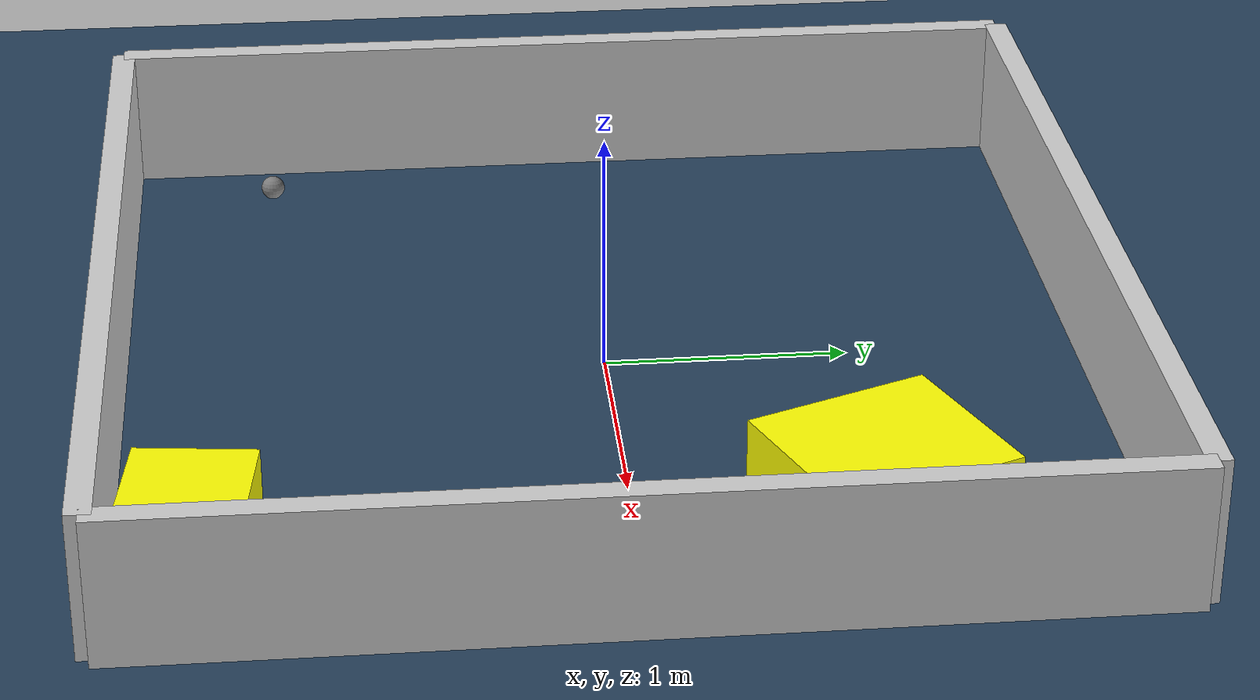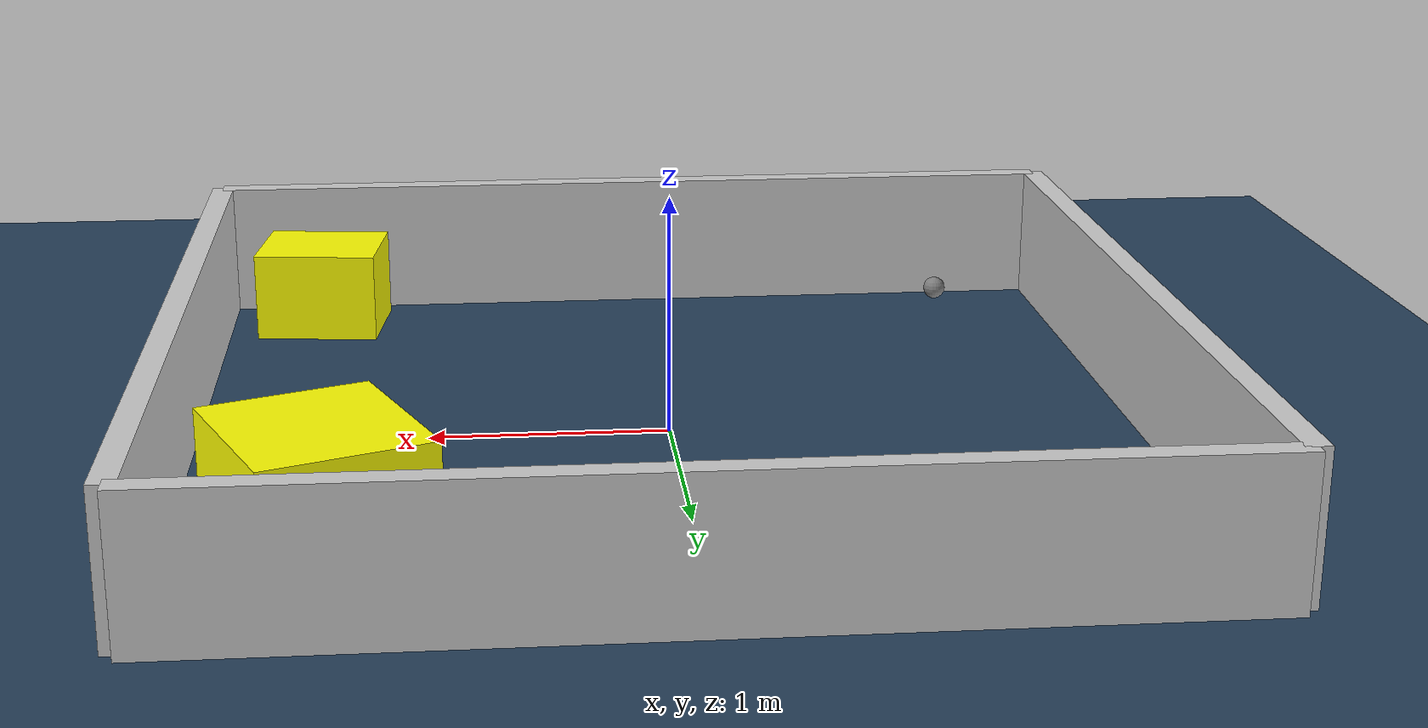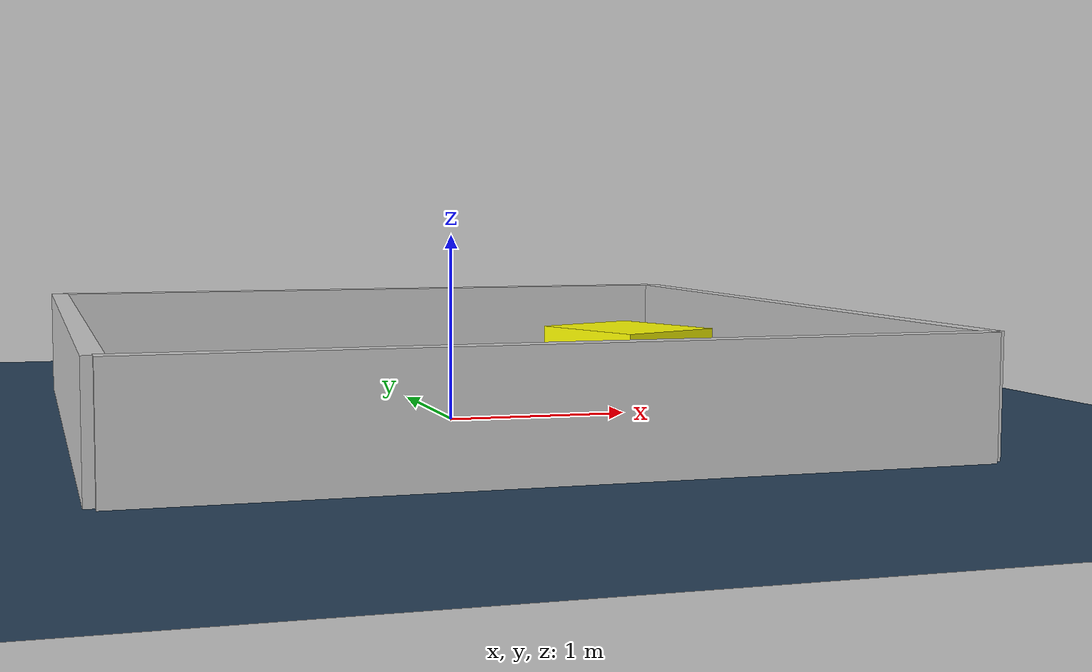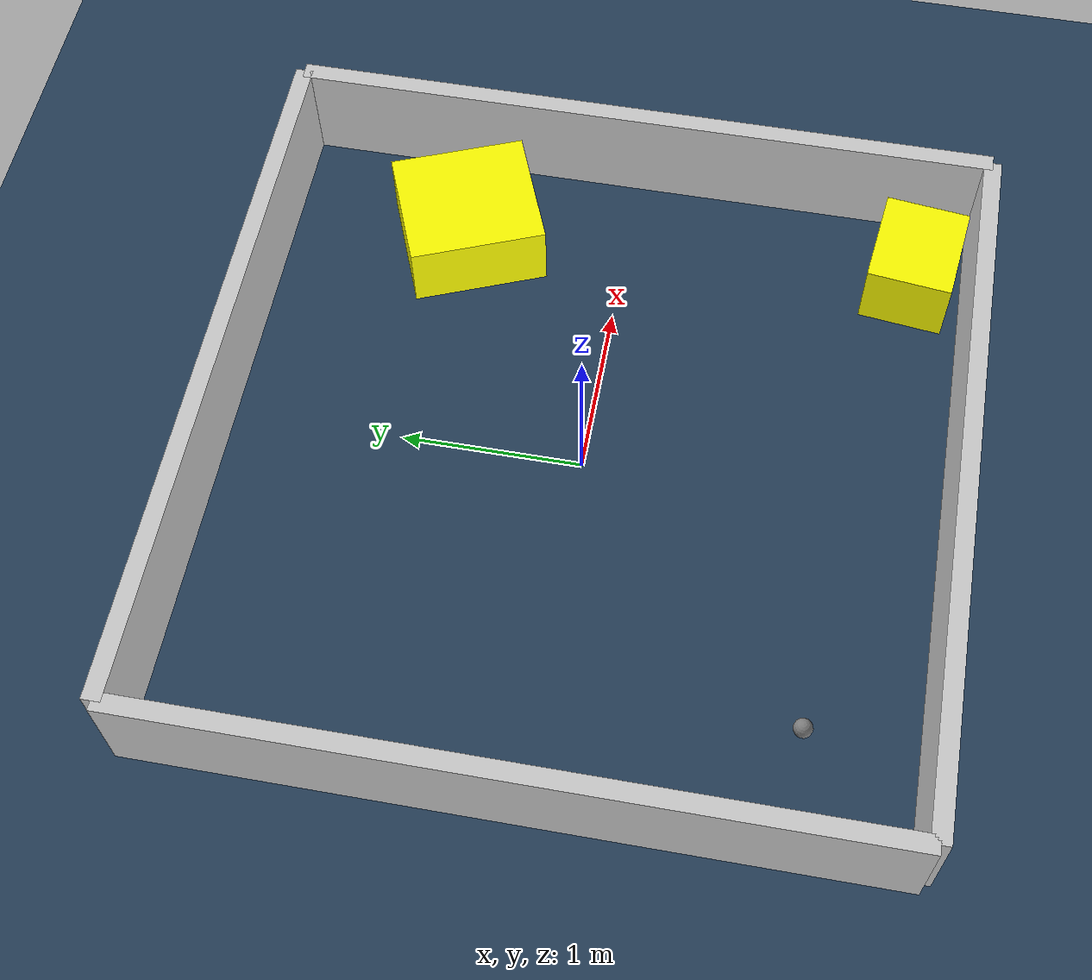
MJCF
<?xml version="1.0" ?>
<mujoco model="generated_environment">
  <option timestep="0.01" integrator="RK4" cone="elliptic"/>
  <default>
    <geom density="1"/>
  </default>
  <asset>
    <texture builtin="gradient" height="3072" rgb1="0.3 0.5 0.7" rgb2="0 0 0" type="skybox" width="512"/>
    <texture builtin="checker" height="300" mark="edge" markrgb="0.8 0.8 0.8" name="groundplane" rgb1="0.2 0.3 0.4" rgb2="0.1 0.2 0.3" type="2d" width="300"/>
    <material name="groundplane" reflectance="0.2" texrepeat="5 5" texture="groundplane" texuniform="true"/>
    <material name="robot" rgba="0.0 1.0 0.0 1"/>
  </asset>
  <worldbody>
    <light dir="0 0 -1" directional="true" pos="0 0 1.5"/>
    <geom condim="4" friction="1.0 0.005 0.001" material="groundplane" name="floor" size="0 0 0.05" type="plane"/>
    <body name="walls">
      <geom name="wall_1" condim="4" pos="-2.0 0.0 0.3" rgba="0.800000011920929 0.800000011920929 0.800000011920929 1.0" size="0.05 2.0 0.3" type="box"/>
      <geom name="wall_2" condim="4" pos="2.0 0.0 0.3" rgba="0.800000011920929 0.800000011920929 0.800000011920929 1.0" size="0.05 2.0 0.3" type="box"/>
      <geom name="wall_3" condim="4" pos="0.0 -2.0 0.3" rgba="0.800000011920929 0.800000011920929 0.800000011920929 1.0" size="2.0 0.05 0.3" type="box"/>
      <geom name="wall_4" condim="4" pos="0.0 2.0 0.3" rgba="0.800000011920929 0.800000011920929 0.800000011920929 1.0" size="2.0 0.05 0.3" type="box"/>
    </body>
    <body name="robot">
      <joint name="joint_x" type="slide" pos="0 0 0" axis="1 0 0"/>
      <joint name="joint_y" type="slide" pos="0 0 0" axis="0 1 0"/>
      <geom name="robot" type="sphere" pos="-1.386482509313504 -1.3469631193830245 0.2" size="0.05" mass="5." friction="1.0 0.005 0.0001" condim="4"/>
      <site name="sensor_ball"/>
    </body>
    <body name="obstacle_1_movable">
      <geom name="obstacle_1_movable" condim="4" pos="1.5141157866025967 -1.6548043149464473 0.2" euler="0 0 263.26779781270204" friction="1.0 0.005 0.001" rgba="1 1 0 1" size="0.2375249837678166 0.2794489790332899 0.2" type="box" mass="0.1"/>
      <joint type="free"/>
    </body>
    <body name="obstacle_2_movable">
      <geom name="obstacle_2_movable" condim="4" pos="1.3959352261619382 0.9137316929481414 0.2" euler="0 0 22.09455980412827" friction="1.0 0.005 0.001" rgba="1 1 0 1" size="0.35083882921034476 0.3843707897380272 0.2" type="box" mass="0.1"/>
      <joint type="free"/>
    </body>
  </worldbody>
  <actuator>
    <motor name="actuator_x" joint="joint_x" gear="1" ctrlrange="-1 1"/>
    <motor name="actuator_y" joint="joint_y" gear="1" ctrlrange="-1 1"/>
  </actuator>
</mujoco>
